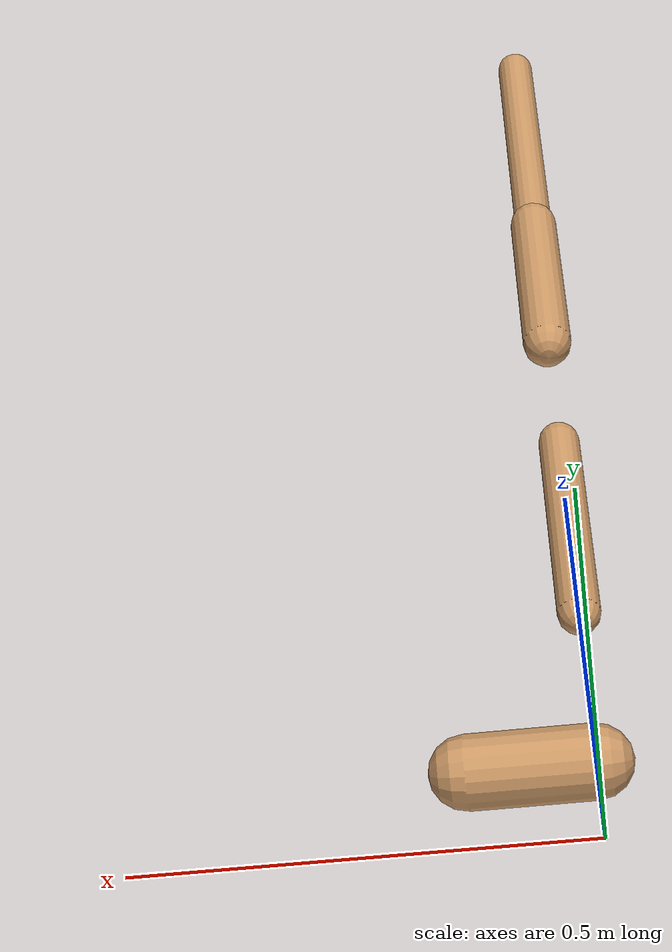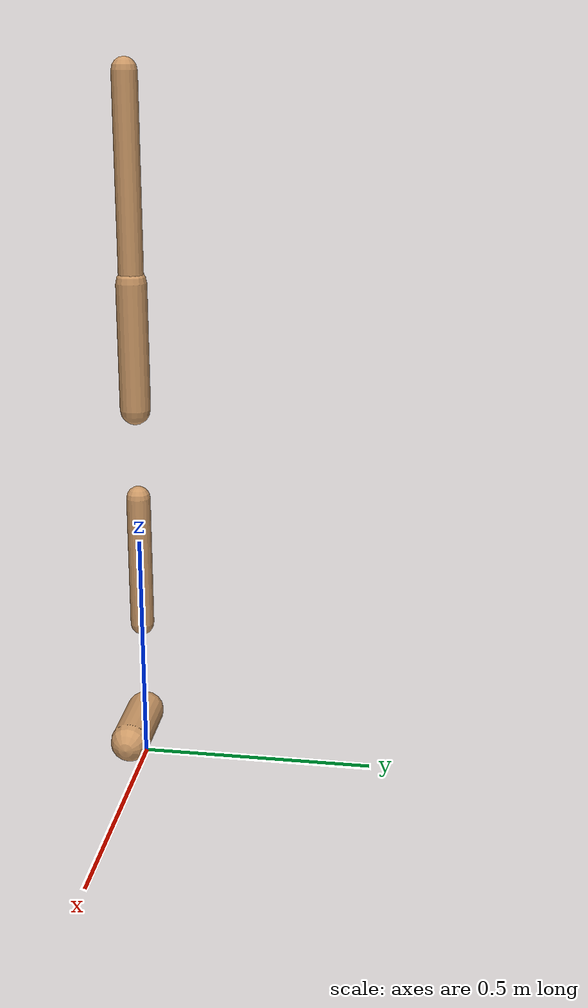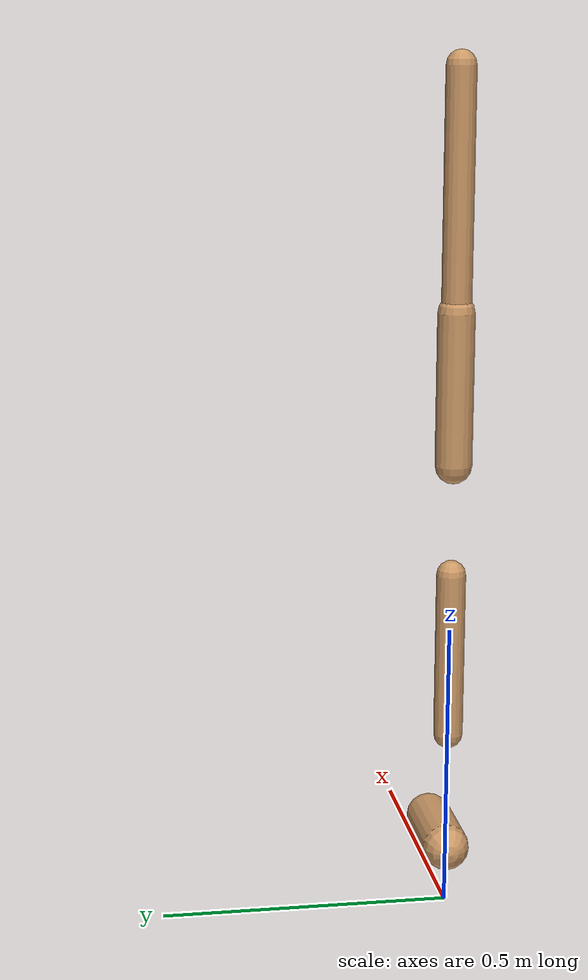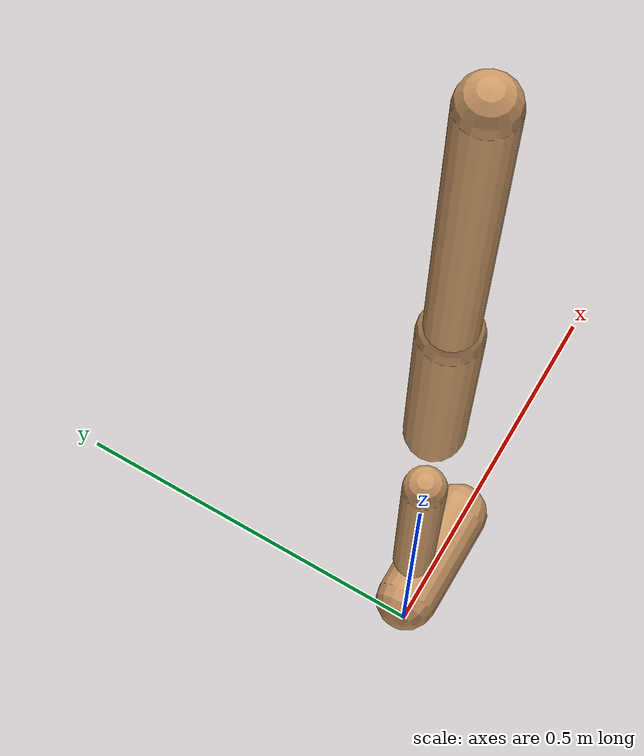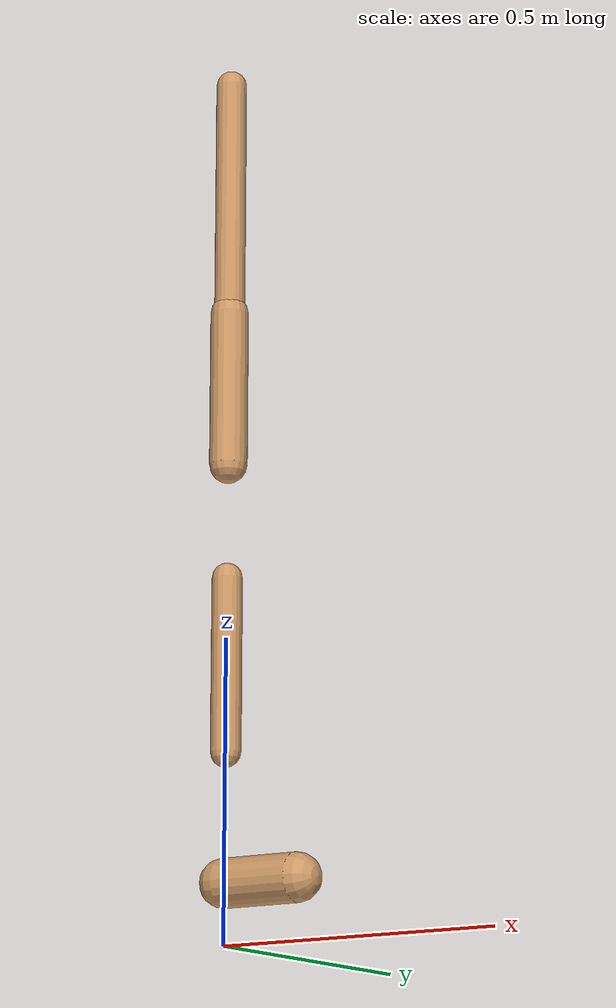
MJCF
<mujoco model="walker2d">
  <compiler angle="degree" coordinate="global" inertiafromgeom="true" />
  <default>
    <joint armature="0.01" damping=".1" limited="true" />
    <geom conaffinity="0" condim="3" contype="1" density="1000" friction="0.8 .1 .1" rgba="0.8 0.6 .4 1" />
  </default>
  <option integrator="RK4" timestep="0.002" />
  <worldbody>

    <body name="torso" pos="0 0 -0.40417738384932467">
      <joint armature="0" axis="1 0 0" damping="0" limited="false" name="ignorex" pos="0 0 0" stiffness="0" type="slide" />
      <joint armature="0" axis="0 0 1" damping="0" limited="false" name="ignorez" pos="0 0 0" ref="1.25" stiffness="0" type="slide" />
      <joint armature="0" axis="0 1 0" damping="0" limited="false" name="ignorey" pos="0 0 0" stiffness="0" type="hinge" />
      <geom fromto="0 0 1.45 0 0 1.05" name="torso_geom" size="0.025321445818469852" type="capsule" />
      <body name="thigh">
        <joint axis="0 -1 0" name="thigh_joint" pos="0 0 1.05" range="-150 0" type="hinge" />
        <geom fromto="0.0 0.0 1.05 0.0 0.0 0.791452444981259" name="thigh_geom" size="0.031413840849240975" type="capsule" />
        <body name="leg" pos="0.0 0.0 0.19145244498125902">
          <joint axis="0 -1 0" name="leg_joint" pos="0 0 0.6" range="-150 0" type="hinge" />
          <geom fromto="0.0 0.0 0.6 0.0 0.0 0.3127249388680656" name="leg_geom" size="0.025131072679392782" type="capsule" />
          <body name="foot" pos="0.0 0.0 0.21272493886806562">
            <joint axis="0 -1 0" name="foot_joint" pos="0 0 0.1" range="-45 45" type="hinge" />
            <geom fromto="0.0 0.0 0.1 0.13871638737161712 0.0 0.1" name="foot_geom" size="0.0408025396185306" type="capsule" />
          </body>
        </body>
      </body>

      <body name="thigh_left">
        <joint axis="0 -1 0" name="thigh_left_joint" pos="0 0 1.05" range="-150 0" type="hinge" />
        <geom fromto="0.0 0.0 1.05 0.0 0.0 0.791452444981259" name="thigh_left_geom" rgba=".7 .3 .6 1" size="0.031413840849240975" type="capsule" />
        <body name="leg_left" pos="0.0 0.0 0.19145244498125902">
          <joint axis="0 -1 0" name="leg_left_joint" pos="0 0 0.6" range="-150 0" type="hinge" />
          <geom fromto="0.0 0.0 0.6 0.0 0.0 0.3127249388680656" name="leg_left_geom" rgba=".7 .3 .6 1" size="0.025131072679392782" type="capsule" />
          <body name="foot_left" pos="0.0 0.0 0.21272493886806562">
            <joint axis="0 -1 0" name="foot_left_joint" pos="0 0 0.1" range="-45 45" type="hinge" />
            <geom fromto="0.0 0.0 0.1 0.13871638737161712 0.0 0.1" name="foot_left_geom" rgba=".7 .3 .6 1" size="0.0408025396185306" type="capsule" />
          </body>
        </body>
      </body>
    </body>
  </worldbody>
  <actuator>

    <motor ctrllimited="true" ctrlrange="-1.0 1.0" gear="100" joint="thigh_joint" />
    <motor ctrllimited="true" ctrlrange="-1.0 1.0" gear="100" joint="leg_joint" />
    <motor ctrllimited="true" ctrlrange="-1.0 1.0" gear="100" joint="foot_joint" />
    <motor ctrllimited="true" ctrlrange="-1.0 1.0" gear="100" joint="thigh_left_joint" />
    <motor ctrllimited="true" ctrlrange="-1.0 1.0" gear="100" joint="leg_left_joint" />
    <motor ctrllimited="true" ctrlrange="-1.0 1.0" gear="100" joint="foot_left_joint" />

  </actuator>
</mujoco>
